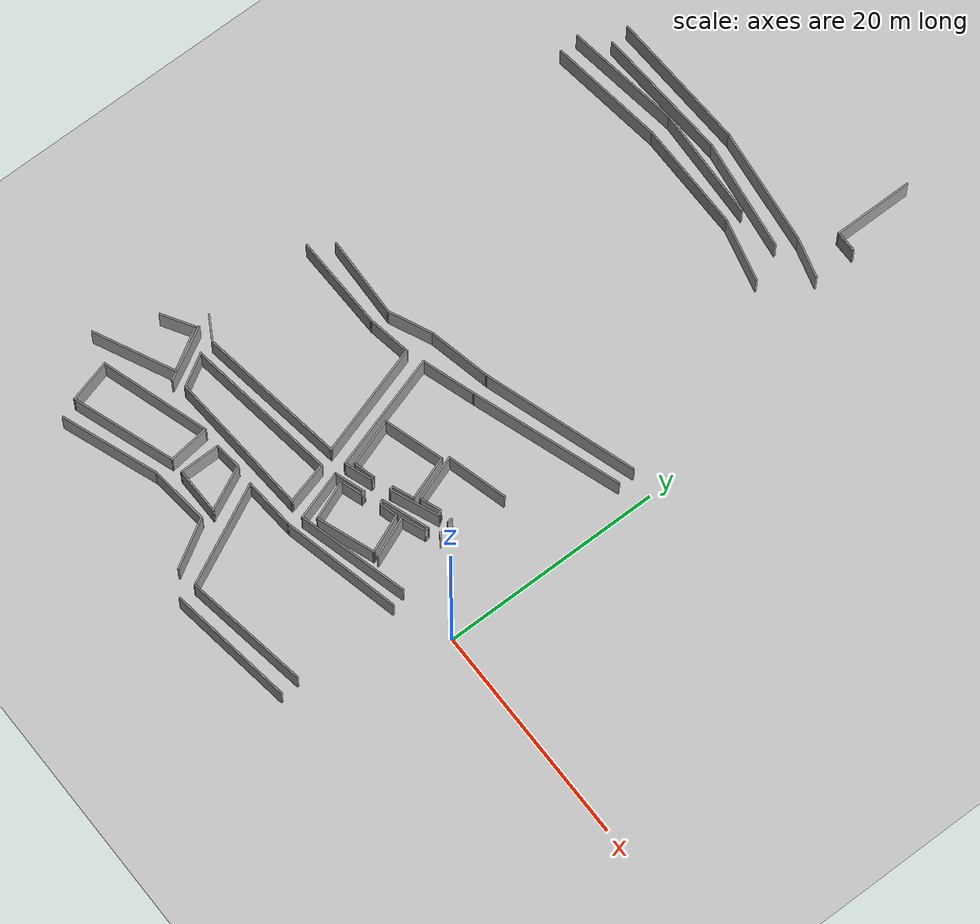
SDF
<sdf version="1.7">
 <world name="default">
  <include><uri>model://sun</uri></include>
  <include><uri>model://ground_plane</uri></include>
  <model name="final_max_v1">
   <pose>-2.52311 0.669104 0 0 -0 0</pose>
   <link name="Wall_106">
    <collision name="Wall_106_Collision">
     <geometry><box><size>12.8269 0.15 2.5</size></box></geometry>
     <pose>0 0 1.25 0 -0 0</pose>
    </collision>
    <visual name="Wall_106_Visual">
     <pose>0 0 1.25 0 -0 0</pose>
     <geometry><box><size>12.8269 0.15 2.5</size></box></geometry>
     <material>
      <script><uri>file://media/materials/scripts/gazebo.material</uri><name>Gazebo/Grey</name></script>
      <ambient>1 1 1 1</ambient>
     </material>
     <meta><layer>0</layer></meta>
    </visual>
    <pose>-23.9732 43.0681 0 0 -0 0.044415</pose>
   </link>
   <link name="Wall_107">
    <collision name="Wall_107_Collision">
     <geometry><box><size>10.9191 0.15 2.5</size></box></geometry>
     <pose>0 0 1.25 0 -0 0</pose>
    </collision>
    <visual name="Wall_107_Visual">
     <pose>0 0 1.25 0 -0 0</pose>
     <geometry><box><size>10.9191 0.15 2.5</size></box></geometry>
     <material>
      <script><uri>file://media/materials/scripts/gazebo.material</uri><name>Gazebo/Grey</name></script>
      <ambient>1 1 1 1</ambient>
     </material>
     <meta><layer>0</layer></meta>
    </visual>
    <pose>-12.2939 42.7164 0 0 -0 -0.117872</pose>
   </link>
   <link name="Wall_111">
    <collision name="Wall_111_Collision">
     <geometry><box><size>3.75 0.15 2.5</size></box></geometry>
     <pose>0 0 1.25 0 -0 0</pose>
    </collision>
    <visual name="Wall_111_Visual">
     <pose>0 0 1.25 0 -0 0</pose>
     <geometry><box><size>3.75 0.15 2.5</size></box></geometry>
     <material>
      <script><uri>file://media/materials/scripts/gazebo.material</uri><name>Gazebo/Grey</name></script>
      <ambient>1 1 1 1</ambient>
     </material>
     <meta><layer>0</layer></meta>
    </visual>
    <pose>-5.20804 41.6173 0 0 -0 -0.261799</pose>
   </link>
   <link name="Wall_113">
    <collision name="Wall_113_Collision">
     <geometry><box><size>2 0.15 2.5</size></box></geometry>
     <pose>0 0 1.25 0 -0 0</pose>
    </collision>
    <visual name="Wall_113_Visual">
     <pose>0 0 1.25 0 -0 0</pose>
     <geometry><box><size>2 0.15 2.5</size></box></geometry>
     <material>
      <script><uri>file://media/materials/scripts/gazebo.material</uri><name>Gazebo/Grey</name></script>
      <ambient>1 1 1 1</ambient>
     </material>
     <meta><layer>0</layer></meta>
    </visual>
    <pose>-4.39437 45.0014 0 0 -0 3.14159</pose>
   </link>
   <link name="Wall_114">
    <collision name="Wall_114_Collision">
     <geometry><box><size>7.25 0.15 2.5</size></box></geometry>
     <pose>0 0 1.25 0 -0 0</pose>
    </collision>
    <visual name="Wall_114_Visual">
     <pose>0 0 1.25 0 -0 0</pose>
     <geometry><box><size>7.25 0.15 2.5</size></box></geometry>
     <material>
      <script><uri>file://media/materials/scripts/gazebo.material</uri><name>Gazebo/Grey</name></script>
      <ambient>1 1 1 1</ambient>
     </material>
     <meta><layer>0</layer></meta>
    </visual>
    <pose>-5.31937 48.5514 0 0 -0 1.5708</pose>
   </link>
   <link name="Wall_155">
    <collision name="Wall_155_Collision">
     <geometry><box><size>12.4081 0.15 2.5</size></box></geometry>
     <pose>0 0 1.25 0 -0 0</pose>
    </collision>
    <visual name="Wall_155_Visual">
     <pose>0 0 1.25 0 -0 0</pose>
     <geometry><box><size>12.4081 0.15 2.5</size></box></geometry>
     <material>
      <script><uri>file://media/materials/scripts/gazebo.material</uri><name>Gazebo/Grey</name></script>
      <ambient>1 1 1 1</ambient>
     </material>
     <meta><layer>0</layer></meta>
    </visual>
    <pose>-23.8522 41.287 0 0 -0 0.060078</pose>
   </link>
   <link name="Wall_157">
    <collision name="Wall_157_Collision">
     <geometry><box><size>10.2725 0.15 2.5</size></box></geometry>
     <pose>0 0 1.25 0 -0 0</pose>
    </collision>
    <visual name="Wall_157_Visual">
     <pose>0 0 1.25 0 -0 0</pose>
     <geometry><box><size>10.2725 0.15 2.5</size></box></geometry>
     <material>
      <script><uri>file://media/materials/scripts/gazebo.material</uri><name>Gazebo/Grey</name></script>
      <ambient>1 1 1 1</ambient>
     </material>
     <meta><layer>0</layer></meta>
    </visual>
    <pose>-12.7202 40.965 0 0 -0 -0.136756</pose>
   </link>
   <link name="Wall_187">
    <collision name="Wall_187_Collision">
     <geometry><box><size>10.5586 0.15 2.5</size></box></geometry>
     <pose>0 0 1.25 0 -0 0</pose>
    </collision>
    <visual name="Wall_187_Visual">
     <pose>0 0 1.25 0 -0 0</pose>
     <geometry><box><size>10.5586 0.15 2.5</size></box></geometry>
     <material>
      <script><uri>file://media/materials/scripts/gazebo.material</uri><name>Gazebo/Grey</name></script>
      <ambient>1 1 1 1</ambient>
     </material>
     <meta><layer>0</layer></meta>
    </visual>
    <pose>-27.0306 39.7397 0 0 -0 0.141897</pose>
   </link>
   <link name="Wall_189">
    <collision name="Wall_189_Collision">
     <geometry><box><size>10.2804 0.15 2.5</size></box></geometry>
     <pose>0 0 1.25 0 -0 0</pose>
    </collision>
    <visual name="Wall_189_Visual">
     <pose>0 0 1.25 0 -0 0</pose>
     <geometry><box><size>10.2804 0.15 2.5</size></box></geometry>
     <material>
      <script><uri>file://media/materials/scripts/gazebo.material</uri><name>Gazebo/Grey</name></script>
      <ambient>1 1 1 1</ambient>
     </material>
     <meta><layer>0</layer></meta>
    </visual>
    <pose>-16.8186 40.2457 0 0 -0 -0.045423</pose>
   </link>
   <link name="Wall_207">
    <collision name="Wall_207_Collision">
     <geometry><box><size>10.546 0.15 2.5</size></box></geometry>
     <pose>0 0 1.25 0 -0 0</pose>
    </collision>
    <visual name="Wall_207_Visual">
     <pose>0 0 1.25 0 -0 0</pose>
     <geometry><box><size>10.546 0.15 2.5</size></box></geometry>
     <material>
      <script><uri>file://media/materials/scripts/gazebo.material</uri><name>Gazebo/Grey</name></script>
      <ambient>1 1 1 1</ambient>
     </material>
     <meta><layer>0</layer></meta>
    </visual>
    <pose>-26.7651 37.7958 0 0 -0 0.133136</pose>
   </link>
   <link name="Wall_208">
    <collision name="Wall_208_Collision">
     <geometry><box><size>10 0.15 2.5</size></box></geometry>
     <pose>0 0 1.25 0 -0 0</pose>
    </collision>
    <visual name="Wall_208_Visual">
     <pose>0 0 1.25 0 -0 0</pose>
     <geometry><box><size>10 0.15 2.5</size></box></geometry>
     <material>
      <script><uri>file://media/materials/scripts/gazebo.material</uri><name>Gazebo/Grey</name></script>
      <ambient>1 1 1 1</ambient>
     </material>
     <meta><layer>0</layer></meta>
    </visual>
    <pose>-16.6881 38.4858 0 0 -0 0</pose>
   </link>
   <link name="Wall_326">
    <collision name="Wall_326_Collision">
     <geometry><box><size>2 0.15 2.5</size></box></geometry>
     <pose>0 0 1.25 0 -0 0</pose>
    </collision>
    <visual name="Wall_326_Visual">
     <pose>0 0 1.25 0 -0 0</pose>
     <geometry><box><size>2 0.15 2.5</size></box></geometry>
     <material>
      <script><uri>file://media/materials/scripts/gazebo.material</uri><name>Gazebo/Grey</name></script>
      <ambient>1 1 1 1</ambient>
     </material>
     <meta><layer>0</layer></meta>
    </visual>
    <pose>-12.5221 1.99009 0 0 -0 -2.87979</pose>
   </link>
   <link name="Wall_327">
    <collision name="Wall_327_Collision">
     <geometry><box><size>4.52817 0.15 2.5</size></box></geometry>
     <pose>0 0 1.25 0 -0 0</pose>
    </collision>
    <visual name="Wall_327_Visual">
     <pose>0 0 1.25 0 -0 0</pose>
     <geometry><box><size>4.52817 0.15 2.5</size></box></geometry>
     <material>
      <script><uri>file://media/materials/scripts/gazebo.material</uri><name>Gazebo/Grey</name></script>
      <ambient>1 1 1 1</ambient>
     </material>
     <meta><layer>0</layer></meta>
    </visual>
    <pose>-14.1161 3.82466 0 0 -0 1.89652</pose>
   </link>
   <link name="Wall_328">
    <collision name="Wall_328_Collision">
     <geometry><box><size>5.68673 0.15 2.5</size></box></geometry>
     <pose>0 0 1.25 0 -0 0</pose>
    </collision>
    <visual name="Wall_328_Visual">
     <pose>0 0 1.25 0 -0 0</pose>
     <geometry><box><size>5.68673 0.15 2.5</size></box></geometry>
     <material>
      <script><uri>file://media/materials/scripts/gazebo.material</uri><name>Gazebo/Grey</name></script>
      <ambient>1 1 1 1</ambient>
     </material>
     <meta><layer>0</layer></meta>
    </visual>
    <pose>-12.1699 6.71066 0 0 -0 0.2977</pose>
   </link>
   <link name="Wall_329">
    <collision name="Wall_329_Collision">
     <geometry><box><size>4.22069 0.15 2.5</size></box></geometry>
     <pose>0 0 1.25 0 -0 0</pose>
    </collision>
    <visual name="Wall_329_Visual">
     <pose>0 0 1.25 0 -0 0</pose>
     <geometry><box><size>4.22069 0.15 2.5</size></box></geometry>
     <material>
      <script><uri>file://media/materials/scripts/gazebo.material</uri><name>Gazebo/Grey</name></script>
      <ambient>1 1 1 1</ambient>
     </material>
     <meta><layer>0</layer></meta>
    </visual>
    <pose>-8.8617 5.59789 0 0 -0 -1.2397</pose>
   </link>
   <link name="Wall_330">
    <collision name="Wall_330_Collision">
     <geometry><box><size>2.0935 0.15 2.5</size></box></geometry>
     <pose>0 0 1.25 0 -0 0</pose>
    </collision>
    <visual name="Wall_330_Visual">
     <pose>0 0 1.25 0 -0 0</pose>
     <geometry><box><size>2.0935 0.15 2.5</size></box></geometry>
     <material>
      <script><uri>file://media/materials/scripts/gazebo.material</uri><name>Gazebo/Grey</name></script>
      <ambient>1 1 1 1</ambient>
     </material>
     <meta><layer>0</layer></meta>
    </visual>
    <pose>-9.1023 3.3122 0 0 -0 -2.76109</pose>
   </link>
   <link name="Wall_332">
    <collision name="Wall_332_Collision">
     <geometry><box><size>2.01562 0.15 2.5</size></box></geometry>
     <pose>0 0 1.25 0 -0 0</pose>
    </collision>
    <visual name="Wall_332_Visual">
     <pose>0 0 1.25 0 -0 0</pose>
     <geometry><box><size>2.01562 0.15 2.5</size></box></geometry>
     <material>
      <script><uri>file://media/materials/scripts/gazebo.material</uri><name>Gazebo/Grey</name></script>
      <ambient>1 1 1 1</ambient>
     </material>
     <meta><layer>0</layer></meta>
    </visual>
    <pose>-6.96698 4.42497 0 0 -0 -2.77905</pose>
   </link>
   <link name="Wall_333">
    <collision name="Wall_333_Collision">
     <geometry><box><size>4.35405 0.15 2.5</size></box></geometry>
     <pose>0 0 1.25 0 -0 0</pose>
    </collision>
    <visual name="Wall_333_Visual">
     <pose>0 0 1.25 0 -0 0</pose>
     <geometry><box><size>4.35405 0.15 2.5</size></box></geometry>
     <material>
      <script><uri>file://media/materials/scripts/gazebo.material</uri><name>Gazebo/Grey</name></script>
      <ambient>1 1 1 1</ambient>
     </material>
     <meta><layer>0</layer></meta>
    </visual>
    <pose>-8.53088 6.07909 0 0 -0 1.90612</pose>
   </link>
   <link name="Wall_334">
    <collision name="Wall_334_Collision">
     <geometry><box><size>5.63652 0.15 2.5</size></box></geometry>
     <pose>0 0 1.25 0 -0 0</pose>
    </collision>
    <visual name="Wall_334_Visual">
     <pose>0 0 1.25 0 -0 0</pose>
     <geometry><box><size>5.63652 0.15 2.5</size></box></geometry>
     <material>
      <script><uri>file://media/materials/scripts/gazebo.material</uri><name>Gazebo/Grey</name></script>
      <ambient>1 1 1 1</ambient>
     </material>
     <meta><layer>0</layer></meta>
    </visual>
    <pose>-6.57601 8.78584 0 0 -0 0.266252</pose>
   </link>
   <link name="Wall_338">
    <collision name="Wall_338_Collision">
     <geometry><box><size>3.79257 0.15 2.5</size></box></geometry>
     <pose>0 0 1.25 0 -0 0</pose>
    </collision>
    <visual name="Wall_338_Visual">
     <pose>0 0 1.25 0 -0 0</pose>
     <geometry><box><size>3.79257 0.15 2.5</size></box></geometry>
     <material>
      <script><uri>file://media/materials/scripts/gazebo.material</uri><name>Gazebo/Grey</name></script>
      <ambient>1 1 1 1</ambient>
     </material>
     <meta><layer>0</layer></meta>
    </visual>
    <pose>-12.1998 -1.73062 0 0 -0 -1.20362</pose>
   </link>
   <link name="Wall_339">
    <collision name="Wall_339_Collision">
     <geometry><box><size>5.49451 0.15 2.5</size></box></geometry>
     <pose>0 0 1.25 0 -0 0</pose>
    </collision>
    <visual name="Wall_339_Visual">
     <pose>0 0 1.25 0 -0 0</pose>
     <geometry><box><size>5.49451 0.15 2.5</size></box></geometry>
     <material>
      <script><uri>file://media/materials/scripts/gazebo.material</uri><name>Gazebo/Grey</name></script>
      <ambient>1 1 1 1</ambient>
     </material>
     <meta><layer>0</layer></meta>
    </visual>
    <pose>-9.03535 -2.51518 0 0 -0 0.349607</pose>
   </link>
   <link name="Wall_340">
    <collision name="Wall_340_Collision">
     <geometry><box><size>3.71476 0.15 2.5</size></box></geometry>
     <pose>0 0 1.25 0 -0 0</pose>
    </collision>
    <visual name="Wall_340_Visual">
     <pose>0 0 1.25 0 -0 0</pose>
     <geometry><box><size>3.71476 0.15 2.5</size></box></geometry>
     <material>
      <script><uri>file://media/materials/scripts/gazebo.material</uri><name>Gazebo/Grey</name></script>
      <ambient>1 1 1 1</ambient>
     </material>
     <meta><layer>0</layer></meta>
    </visual>
    <pose>-7.2047 0.047724 0 0 -0 1.9622</pose>
   </link>
   <link name="Wall_343">
    <collision name="Wall_343_Collision">
     <geometry><box><size>3.92824 0.15 2.5</size></box></geometry>
     <pose>0 0 1.25 0 -0 0</pose>
    </collision>
    <visual name="Wall_343_Visual">
     <pose>0 0 1.25 0 -0 0</pose>
     <geometry><box><size>3.92824 0.15 2.5</size></box></geometry>
     <material>
      <script><uri>file://media/materials/scripts/gazebo.material</uri><name>Gazebo/Grey</name></script>
      <ambient>1 1 1 1</ambient>
     </material>
     <meta><layer>0</layer></meta>
    </visual>
    <pose>-6.76011 0.204637 0 0 -0 -1.18772</pose>
   </link>
   <link name="Wall_348">
    <collision name="Wall_348_Collision">
     <geometry><box><size>2.08526 0.15 2.5</size></box></geometry>
     <pose>0 0 1.25 0 -0 0</pose>
    </collision>
    <visual name="Wall_348_Visual">
     <pose>0 0 1.25 0 -0 0</pose>
     <geometry><box><size>2.08526 0.15 2.5</size></box></geometry>
     <material>
      <script><uri>file://media/materials/scripts/gazebo.material</uri><name>Gazebo/Grey</name></script>
      <ambient>1 1 1 1</ambient>
     </material>
     <meta><layer>0</layer></meta>
    </visual>
    <pose>-11.9382 0.283094 0 0 -0 0.330297</pose>
   </link>
   <link name="Wall_350">
    <collision name="Wall_350_Collision">
     <geometry><box><size>1.75 0.15 2.5</size></box></geometry>
     <pose>0 0 1.25 0 -0 0</pose>
    </collision>
    <visual name="Wall_350_Visual">
     <pose>0 0 1.25 0 -0 0</pose>
     <geometry><box><size>1.75 0.15 2.5</size></box></geometry>
     <material>
      <script><uri>file://media/materials/scripts/gazebo.material</uri><name>Gazebo/Grey</name></script>
      <ambient>1 1 1 1</ambient>
     </material>
     <meta><layer>0</layer></meta>
    </visual>
    <pose>-8.6574 1.48825 0 0 -0 -2.87979</pose>
   </link>
   <link name="Wall_352">
    <collision name="Wall_352_Collision">
     <geometry><box><size>2.28681 0.15 2.5</size></box></geometry>
     <pose>0 0 1.25 0 -0 0</pose>
    </collision>
    <visual name="Wall_352_Visual">
     <pose>0 0 1.25 0 -0 0</pose>
     <geometry><box><size>2.28681 0.15 2.5</size></box></geometry>
     <material>
      <script><uri>file://media/materials/scripts/gazebo.material</uri><name>Gazebo/Grey</name></script>
      <ambient>1 1 1 1</ambient>
     </material>
     <meta><layer>0</layer></meta>
    </visual>
    <pose>-6.47244 2.34911 0 0 -0 0.375961</pose>
   </link>
   <link name="Wall_356">
    <collision name="Wall_356_Collision">
     <geometry><box><size>0.444601 0.15 2.5</size></box></geometry>
     <pose>0 0 1.25 0 -0 0</pose>
    </collision>
    <visual name="Wall_356_Visual">
     <pose>0 0 1.25 0 -0 0</pose>
     <geometry><box><size>0.444601 0.15 2.5</size></box></geometry>
     <material>
      <script><uri>file://media/materials/scripts/gazebo.material</uri><name>Gazebo/Grey</name></script>
      <ambient>1 1 1 1</ambient>
     </material>
     <meta><layer>0</layer></meta>
    </visual>
    <pose>-11.0589 0.739759 0 0 -0 -1.32406</pose>
   </link>
   <link name="Wall_358">
    <collision name="Wall_358_Collision">
     <geometry><box><size>0.523214 0.15 2.5</size></box></geometry>
     <pose>0 0 1.25 0 -0 0</pose>
    </collision>
    <visual name="Wall_358_Visual">
     <pose>0 0 1.25 0 -0 0</pose>
     <geometry><box><size>0.523214 0.15 2.5</size></box></geometry>
     <material>
      <script><uri>file://media/materials/scripts/gazebo.material</uri><name>Gazebo/Grey</name></script>
      <ambient>1 1 1 1</ambient>
     </material>
     <meta><layer>0</layer></meta>
    </visual>
    <pose>-9.5231 1.443 0 0 -0 -1.04932</pose>
   </link>
   <link name="Wall_360">
    <collision name="Wall_360_Collision">
     <geometry><box><size>0.411181 0.15 2.5</size></box></geometry>
     <pose>0 0 1.25 0 -0 0</pose>
    </collision>
    <visual name="Wall_360_Visual">
     <pose>0 0 1.25 0 -0 0</pose>
     <geometry><box><size>0.411181 0.15 2.5</size></box></geometry>
     <material>
      <script><uri>file://media/materials/scripts/gazebo.material</uri><name>Gazebo/Grey</name></script>
      <ambient>1 1 1 1</ambient>
     </material>
     <meta><layer>0</layer></meta>
    </visual>
    <pose>-11.5853 2.1063 0 0 -0 1.90897</pose>
   </link>
   <link name="Wall_362">
    <collision name="Wall_362_Collision">
     <geometry><box><size>0.467902 0.15 2.5</size></box></geometry>
     <pose>0 0 1.25 0 -0 0</pose>
    </collision>
    <visual name="Wall_362_Visual">
     <pose>0 0 1.25 0 -0 0</pose>
     <geometry><box><size>0.467902 0.15 2.5</size></box></geometry>
     <material>
      <script><uri>file://media/materials/scripts/gazebo.material</uri><name>Gazebo/Grey</name></script>
      <ambient>1 1 1 1</ambient>
     </material>
     <meta><layer>0</layer></meta>
    </visual>
    <pose>-9.98226 2.79392 0 0 -0 1.71151</pose>
   </link>
   <link name="Wall_364">
    <collision name="Wall_364_Collision">
     <geometry><box><size>0.497007 0.15 2.5</size></box></geometry>
     <pose>0 0 1.25 0 -0 0</pose>
    </collision>
    <visual name="Wall_364_Visual">
     <pose>0 0 1.25 0 -0 0</pose>
     <geometry><box><size>0.497007 0.15 2.5</size></box></geometry>
     <material>
      <script><uri>file://media/materials/scripts/gazebo.material</uri><name>Gazebo/Grey</name></script>
      <ambient>1 1 1 1</ambient>
     </material>
     <meta><layer>0</layer></meta>
    </visual>
    <pose>-5.98113 4.62472 0 0 -0 2.28524</pose>
   </link>
   <link name="Wall_366">
    <collision name="Wall_366_Collision">
     <geometry><box><size>0.515419 0.15 2.5</size></box></geometry>
     <pose>0 0 1.25 0 -0 0</pose>
    </collision>
    <visual name="Wall_366_Visual">
     <pose>0 0 1.25 0 -0 0</pose>
     <geometry><box><size>0.515419 0.15 2.5</size></box></geometry>
     <material>
      <script><uri>file://media/materials/scripts/gazebo.material</uri><name>Gazebo/Grey</name></script>
      <ambient>1 1 1 1</ambient>
     </material>
     <meta><layer>0</layer></meta>
    </visual>
    <pose>-4.94543 4.8138 0 0 -0 1.60655</pose>
   </link>
   <link name="Wall_368">
    <collision name="Wall_368_Collision">
     <geometry><box><size>0.458009 0.15 2.5</size></box></geometry>
     <pose>0 0 1.25 0 -0 0</pose>
    </collision>
    <visual name="Wall_368_Visual">
     <pose>0 0 1.25 0 -0 0</pose>
     <geometry><box><size>0.458009 0.15 2.5</size></box></geometry>
     <material>
      <script><uri>file://media/materials/scripts/gazebo.material</uri><name>Gazebo/Grey</name></script>
      <ambient>1 1 1 1</ambient>
     </material>
     <meta><layer>0</layer></meta>
    </visual>
    <pose>-5.4839 2.89531 0 0 -0 -1.53674</pose>
   </link>
   <link name="Wall_370">
    <collision name="Wall_370_Collision">
     <geometry><box><size>0.49586 0.15 2.5</size></box></geometry>
     <pose>0 0 1.25 0 -0 0</pose>
    </collision>
    <visual name="Wall_370_Visual">
     <pose>0 0 1.25 0 -0 0</pose>
     <geometry><box><size>0.49586 0.15 2.5</size></box></geometry>
     <material>
      <script><uri>file://media/materials/scripts/gazebo.material</uri><name>Gazebo/Grey</name></script>
      <ambient>1 1 1 1</ambient>
     </material>
     <meta><layer>0</layer></meta>
    </visual>
    <pose>-4.41813 3.46707 0 0 -0 -0.602649</pose>
   </link>
   <link name="Wall_381">
    <collision name="Wall_381_Collision">
     <geometry><box><size>14.3834 0.15 2.5</size></box></geometry>
     <pose>0 0 1.25 0 -0 0</pose>
    </collision>
    <visual name="Wall_381_Visual">
     <pose>0 0 1.25 0 -0 0</pose>
     <geometry><box><size>14.3834 0.15 2.5</size></box></geometry>
     <material>
      <script><uri>file://media/materials/scripts/gazebo.material</uri><name>Gazebo/Grey</name></script>
      <ambient>1 1 1 1</ambient>
     </material>
     <meta><layer>0</layer></meta>
    </visual>
    <pose>-6.23233 16.9329 0 0 -0 0.313621</pose>
   </link>
   <link name="Wall_385">
    <collision name="Wall_385_Collision">
     <geometry><box><size>5.83984 0.15 2.5</size></box></geometry>
     <pose>0 0 1.25 0 -0 0</pose>
    </collision>
    <visual name="Wall_385_Visual">
     <pose>0 0 1.25 0 -0 0</pose>
     <geometry><box><size>5.83984 0.15 2.5</size></box></geometry>
     <material>
      <script><uri>file://media/materials/scripts/gazebo.material</uri><name>Gazebo/Grey</name></script>
      <ambient>1 1 1 1</ambient>
     </material>
     <meta><layer>0</layer></meta>
    </visual>
    <pose>-8.99774 37.818 0 0 -0 -0.236973</pose>
   </link>
   <link name="Wall_394">
    <collision name="Wall_394_Collision">
     <geometry><box><size>7.47359 0.15 2.5</size></box></geometry>
     <pose>0 0 1.25 0 -0 0</pose>
    </collision>
    <visual name="Wall_394_Visual">
     <pose>0 0 1.25 0 -0 0</pose>
     <geometry><box><size>7.47359 0.15 2.5</size></box></geometry>
     <material>
      <script><uri>file://media/materials/scripts/gazebo.material</uri><name>Gazebo/Grey</name></script>
      <ambient>1 1 1 1</ambient>
     </material>
     <meta><layer>0</layer></meta>
    </visual>
    <pose>-25.9366 11.9607 0 0 -0 -0.037482</pose>
   </link>
   <link name="Wall_398">
    <collision name="Wall_398_Collision">
     <geometry><box><size>8.58721 0.15 2.5</size></box></geometry>
     <pose>0 0 1.25 0 -0 0</pose>
    </collision>
    <visual name="Wall_398_Visual">
     <pose>0 0 1.25 0 -0 0</pose>
     <geometry><box><size>8.58721 0.15 2.5</size></box></geometry>
     <material>
      <script><uri>file://media/materials/scripts/gazebo.material</uri><name>Gazebo/Grey</name></script>
      <ambient>1 1 1 1</ambient>
     </material>
     <meta><layer>0</layer></meta>
    </visual>
    <pose>-26.6782 10.1895 0 0 -0 0.01868</pose>
   </link>
   <link name="Wall_400">
    <collision name="Wall_400_Collision">
     <geometry><box><size>4.23042 0.15 2.5</size></box></geometry>
     <pose>0 0 1.25 0 -0 0</pose>
    </collision>
    <visual name="Wall_400_Visual">
     <pose>0 0 1.25 0 -0 0</pose>
     <geometry><box><size>4.23042 0.15 2.5</size></box></geometry>
     <material>
      <script><uri>file://media/materials/scripts/gazebo.material</uri><name>Gazebo/Grey</name></script>
      <ambient>1 1 1 1</ambient>
     </material>
     <meta><layer>0</layer></meta>
    </visual>
    <pose>-20.4212 12.6703 0 0 -0 0.428018</pose>
   </link>
   <link name="Wall_401">
    <collision name="Wall_401_Collision">
     <geometry><box><size>5.84537 0.15 2.5</size></box></geometry>
     <pose>0 0 1.25 0 -0 0</pose>
    </collision>
    <visual name="Wall_401_Visual">
     <pose>0 0 1.25 0 -0 0</pose>
     <geometry><box><size>5.84537 0.15 2.5</size></box></geometry>
     <material>
      <script><uri>file://media/materials/scripts/gazebo.material</uri><name>Gazebo/Grey</name></script>
      <ambient>1 1 1 1</ambient>
     </material>
     <meta><layer>0</layer></meta>
    </visual>
    <pose>-15.7834 14.1273 0 0 -0 0.215921</pose>
   </link>
   <link name="Wall_404">
    <collision name="Wall_404_Collision">
     <geometry><box><size>4 0.15 2.5</size></box></geometry>
     <pose>0 0 1.25 0 -0 0</pose>
    </collision>
    <visual name="Wall_404_Visual">
     <pose>0 0 1.25 0 -0 0</pose>
     <geometry><box><size>4 0.15 2.5</size></box></geometry>
     <material>
      <script><uri>file://media/materials/scripts/gazebo.material</uri><name>Gazebo/Grey</name></script>
      <ambient>1 1 1 1</ambient>
     </material>
     <meta><layer>0</layer></meta>
    </visual>
    <pose>-14.4631 -2.31451 0 0 -0 1.8326</pose>
   </link>
   <link name="Wall_406">
    <collision name="Wall_406_Collision">
     <geometry><box><size>3.25 0.15 2.5</size></box></geometry>
     <pose>0 0 1.25 0 -0 0</pose>
    </collision>
    <visual name="Wall_406_Visual">
     <pose>0 0 1.25 0 -0 0</pose>
     <geometry><box><size>3.25 0.15 2.5</size></box></geometry>
     <material>
      <script><uri>file://media/materials/scripts/gazebo.material</uri><name>Gazebo/Grey</name></script>
      <ambient>1 1 1 1</ambient>
     </material>
     <meta><layer>0</layer></meta>
    </visual>
    <pose>-27.828 -3.70736 0 0 -0 -1.0472</pose>
   </link>
   <link name="Wall_407">
    <collision name="Wall_407_Collision">
     <geometry><box><size>13.2674 0.15 2.5</size></box></geometry>
     <pose>0 0 1.25 0 -0 0</pose>
    </collision>
    <visual name="Wall_407_Visual">
     <pose>0 0 1.25 0 -0 0</pose>
     <geometry><box><size>13.2674 0.15 2.5</size></box></geometry>
     <material>
      <script><uri>file://media/materials/scripts/gazebo.material</uri><name>Gazebo/Grey</name></script>
      <ambient>1 1 1 1</ambient>
     </material>
     <meta><layer>0</layer></meta>
    </visual>
    <pose>-20.5089 -4.61181 0 0 -0 0.066815</pose>
   </link>
   <link name="Wall_409">
    <collision name="Wall_409_Collision">
     <geometry><box><size>13.9247 0.15 2.5</size></box></geometry>
     <pose>0 0 1.25 0 -0 0</pose>
    </collision>
    <visual name="Wall_409_Visual">
     <pose>0 0 1.25 0 -0 0</pose>
     <geometry><box><size>13.9247 0.15 2.5</size></box></geometry>
     <material>
      <script><uri>file://media/materials/scripts/gazebo.material</uri><name>Gazebo/Grey</name></script>
      <ambient>1 1 1 1</ambient>
     </material>
     <meta><layer>0</layer></meta>
    </visual>
    <pose>-21.7821 -1.41006 0 0 -0 0.139103</pose>
   </link>
   <link name="Wall_412">
    <collision name="Wall_412_Collision">
     <geometry><box><size>7.75303 0.15 2.5</size></box></geometry>
     <pose>0 0 1.25 0 -0 0</pose>
    </collision>
    <visual name="Wall_412_Visual">
     <pose>0 0 1.25 0 -0 0</pose>
     <geometry><box><size>7.75303 0.15 2.5</size></box></geometry>
     <material>
      <script><uri>file://media/materials/scripts/gazebo.material</uri><name>Gazebo/Grey</name></script>
      <ambient>1 1 1 1</ambient>
     </material>
     <meta><layer>0</layer></meta>
    </visual>
    <pose>-32.0307 -6.51795 0 0 -0 0.448264</pose>
   </link>
   <link name="Wall_413">
    <collision name="Wall_413_Collision">
     <geometry><box><size>4.27641 0.15 2.5</size></box></geometry>
     <pose>0 0 1.25 0 -0 0</pose>
    </collision>
    <visual name="Wall_413_Visual">
     <pose>0 0 1.25 0 -0 0</pose>
     <geometry><box><size>4.27641 0.15 2.5</size></box></geometry>
     <material>
      <script><uri>file://media/materials/scripts/gazebo.material</uri><name>Gazebo/Grey</name></script>
      <ambient>1 1 1 1</ambient>
     </material>
     <meta><layer>0</layer></meta>
    </visual>
    <pose>-29.6509 -3.09202 0 0 -0 2.10252</pose>
   </link>
   <link name="Wall_414">
    <collision name="Wall_414_Collision">
     <geometry><box><size>3.27165 0.15 2.5</size></box></geometry>
     <pose>0 0 1.25 0 -0 0</pose>
    </collision>
    <visual name="Wall_414_Visual">
     <pose>0 0 1.25 0 -0 0</pose>
     <geometry><box><size>3.27165 0.15 2.5</size></box></geometry>
     <material>
      <script><uri>file://media/materials/scripts/gazebo.material</uri><name>Gazebo/Grey</name></script>
      <ambient>1 1 1 1</ambient>
     </material>
     <meta><layer>0</layer></meta>
    </visual>
    <pose>-32.0307 -2.12439 0 0 -0 -2.59543</pose>
   </link>
   <link name="Wall_432">
    <collision name="Wall_432_Collision">
     <geometry><box><size>2.5 0.15 2.5</size></box></geometry>
     <pose>0 0 1.25 0 -0 0</pose>
    </collision>
    <visual name="Wall_432_Visual">
     <pose>0 0 1.25 0 -0 0</pose>
     <geometry><box><size>2.5 0.15 2.5</size></box></geometry>
     <material>
      <script><uri>file://media/materials/scripts/gazebo.material</uri><name>Gazebo/Grey</name></script>
      <ambient>1 1 1 1</ambient>
     </material>
     <meta><layer>0</layer></meta>
    </visual>
    <pose>-29.8679 -0.415777 0 0 -0 -0.523599</pose>
   </link>
   <link name="Wall_433">
    <collision name="Wall_433_Collision">
     <geometry><box><size>13.5881 0.15 2.5</size></box></geometry>
     <pose>0 0 1.25 0 -0 0</pose>
    </collision>
    <visual name="Wall_433_Visual">
     <pose>0 0 1.25 0 -0 0</pose>
     <geometry><box><size>13.5881 0.15 2.5</size></box></geometry>
     <material>
      <script><uri>file://media/materials/scripts/gazebo.material</uri><name>Gazebo/Grey</name></script>
      <ambient>1 1 1 1</ambient>
     </material>
     <meta><layer>0</layer></meta>
    </visual>
    <pose>-22.2034 -0.021479 0 0 -0 0.146646</pose>
   </link>
   <link name="Wall_435">
    <collision name="Wall_435_Collision">
     <geometry><box><size>10.5808 0.15 2.5</size></box></geometry>
     <pose>0 0 1.25 0 -0 0</pose>
    </collision>
    <visual name="Wall_435_Visual">
     <pose>0 0 1.25 0 -0 0</pose>
     <geometry><box><size>10.5808 0.15 2.5</size></box></geometry>
     <material>
      <script><uri>file://media/materials/scripts/gazebo.material</uri><name>Gazebo/Grey</name></script>
      <ambient>1 1 1 1</ambient>
     </material>
     <meta><layer>0</layer></meta>
    </visual>
    <pose>-17.088 5.94576 0 0 -0 -1.27273</pose>
   </link>
   <link name="Wall_437">
    <collision name="Wall_437_Collision">
     <geometry><box><size>4.04743 0.15 2.5</size></box></geometry>
     <pose>0 0 1.25 0 -0 0</pose>
    </collision>
    <visual name="Wall_437_Visual">
     <pose>0 0 1.25 0 -0 0</pose>
     <geometry><box><size>4.04743 0.15 2.5</size></box></geometry>
     <material>
      <script><uri>file://media/materials/scripts/gazebo.material</uri><name>Gazebo/Grey</name></script>
      <ambient>1 1 1 1</ambient>
     </material>
     <meta><layer>0</layer></meta>
    </visual>
    <pose>-20.54 10.5998 0 0 -0 0.170915</pose>
   </link>
   <link name="Wall_439">
    <collision name="Wall_439_Collision">
     <geometry><box><size>10.9365 0.15 2.5</size></box></geometry>
     <pose>0 0 1.25 0 -0 0</pose>
    </collision>
    <visual name="Wall_439_Visual">
     <pose>0 0 1.25 0 -0 0</pose>
     <geometry><box><size>10.9365 0.15 2.5</size></box></geometry>
     <material>
      <script><uri>file://media/materials/scripts/gazebo.material</uri><name>Gazebo/Grey</name></script>
      <ambient>1 1 1 1</ambient>
     </material>
     <meta><layer>0</layer></meta>
    </visual>
    <pose>-15.4987 6.28843 0 0 -0 1.86683</pose>
   </link>
   <link name="Wall_440">
    <collision name="Wall_440_Collision">
     <geometry><box><size>5.05496 0.15 2.5</size></box></geometry>
     <pose>0 0 1.25 0 -0 0</pose>
    </collision>
    <visual name="Wall_440_Visual">
     <pose>0 0 1.25 0 -0 0</pose>
     <geometry><box><size>5.05496 0.15 2.5</size></box></geometry>
     <material>
      <script><uri>file://media/materials/scripts/gazebo.material</uri><name>Gazebo/Grey</name></script>
      <ambient>1 1 1 1</ambient>
     </material>
     <meta><layer>0</layer></meta>
    </visual>
    <pose>-14.7399 12.2058 0 0 -0 0.314541</pose>
   </link>
   <link name="Wall_442">
    <collision name="Wall_442_Collision">
     <geometry><box><size>2.6815 0.15 2.5</size></box></geometry>
     <pose>0 0 1.25 0 -0 0</pose>
    </collision>
    <visual name="Wall_442_Visual">
     <pose>0 0 1.25 0 -0 0</pose>
     <geometry><box><size>2.6815 0.15 2.5</size></box></geometry>
     <material>
      <script><uri>file://media/materials/scripts/gazebo.material</uri><name>Gazebo/Grey</name></script>
      <ambient>1 1 1 1</ambient>
     </material>
     <meta><layer>0</layer></meta>
    </visual>
    <pose>-12.7336 1.55645 0 0 -0 0.34381</pose>
   </link>
   <link name="Wall_444">
    <collision name="Wall_444_Collision">
     <geometry><box><size>4.68733 0.15 2.5</size></box></geometry>
     <pose>0 0 1.25 0 -0 0</pose>
    </collision>
    <visual name="Wall_444_Visual">
     <pose>0 0 1.25 0 -0 0</pose>
     <geometry><box><size>4.68733 0.15 2.5</size></box></geometry>
     <material>
      <script><uri>file://media/materials/scripts/gazebo.material</uri><name>Gazebo/Grey</name></script>
      <ambient>1 1 1 1</ambient>
     </material>
     <meta><layer>0</layer></meta>
    </visual>
    <pose>-13.0325 -2.16165 0 0 -0 -1.26791</pose>
   </link>
   <link name="Wall_446">
    <collision name="Wall_446_Collision">
     <geometry><box><size>2.90807 0.15 2.5</size></box></geometry>
     <pose>0 0 1.25 0 -0 0</pose>
    </collision>
    <visual name="Wall_446_Visual">
     <pose>0 0 1.25 0 -0 0</pose>
     <geometry><box><size>2.90807 0.15 2.5</size></box></geometry>
     <material>
      <script><uri>file://media/materials/scripts/gazebo.material</uri><name>Gazebo/Grey</name></script>
      <ambient>1 1 1 1</ambient>
     </material>
     <meta><layer>0</layer></meta>
    </visual>
    <pose>-12.402 0.443172 0 0 -0 0.324301</pose>
   </link>
   <link name="Wall_448">
    <collision name="Wall_448_Collision">
     <geometry><box><size>4.52238 0.15 2.5</size></box></geometry>
     <pose>0 0 1.25 0 -0 0</pose>
    </collision>
    <visual name="Wall_448_Visual">
     <pose>0 0 1.25 0 -0 0</pose>
     <geometry><box><size>4.52238 0.15 2.5</size></box></geometry>
     <material>
      <script><uri>file://media/materials/scripts/gazebo.material</uri><name>Gazebo/Grey</name></script>
      <ambient>1 1 1 1</ambient>
     </material>
     <meta><layer>0</layer></meta>
    </visual>
    <pose>-7.5526 2.32702 0 0 -0 0.336675</pose>
   </link>
   <link name="Wall_450">
    <collision name="Wall_450_Collision">
     <geometry><box><size>4.64704 0.15 2.5</size></box></geometry>
     <pose>0 0 1.25 0 -0 0</pose>
    </collision>
    <visual name="Wall_450_Visual">
     <pose>0 0 1.25 0 -0 0</pose>
     <geometry><box><size>4.64704 0.15 2.5</size></box></geometry>
     <material>
      <script><uri>file://media/materials/scripts/gazebo.material</uri><name>Gazebo/Grey</name></script>
      <ambient>1 1 1 1</ambient>
     </material>
     <meta><layer>0</layer></meta>
    </visual>
    <pose>-7.88723 3.50809 0 0 -0 0.398042</pose>
   </link>
   <link name="Wall_452">
    <collision name="Wall_452_Collision">
     <geometry><box><size>10.25 0.15 2.5</size></box></geometry>
     <pose>0 0 1.25 0 -0 0</pose>
    </collision>
    <visual name="Wall_452_Visual">
     <pose>0 0 1.25 0 -0 0</pose>
     <geometry><box><size>10.25 0.15 2.5</size></box></geometry>
     <material>
      <script><uri>file://media/materials/scripts/gazebo.material</uri><name>Gazebo/Grey</name></script>
      <ambient>1 1 1 1</ambient>
     </material>
     <meta><layer>0</layer></meta>
    </visual>
    <pose>-7.47787 -3.02001 0 0 -0 0.261799</pose>
   </link>
   <link name="Wall_458">
    <collision name="Wall_458_Collision">
     <geometry><box><size>5.20672 0.15 2.5</size></box></geometry>
     <pose>0 0 1.25 0 -0 0</pose>
    </collision>
    <visual name="Wall_458_Visual">
     <pose>0 0 1.25 0 -0 0</pose>
     <geometry><box><size>5.20672 0.15 2.5</size></box></geometry>
     <material>
      <script><uri>file://media/materials/scripts/gazebo.material</uri><name>Gazebo/Grey</name></script>
      <ambient>1 1 1 1</ambient>
     </material>
     <meta><layer>0</layer></meta>
    </visual>
    <pose>-29.3406 -3.33597 0 0 -0 -1.07323</pose>
   </link>
   <link name="Wall_540">
    <collision name="Wall_540_Collision">
     <geometry><box><size>11.4761 0.15 2.5</size></box></geometry>
     <pose>0 0 1.25 0 -0 0</pose>
    </collision>
    <visual name="Wall_540_Visual">
     <pose>0 0 1.25 0 -0 0</pose>
     <geometry><box><size>11.4761 0.15 2.5</size></box></geometry>
     <material>
      <script><uri>file://media/materials/scripts/gazebo.material</uri><name>Gazebo/Grey</name></script>
      <ambient>1 1 1 1</ambient>
     </material>
     <meta><layer>0</layer></meta>
    </visual>
    <pose>-7.21545 -15.3556 0 0 -0 0.141897</pose>
   </link>
   <link name="Wall_561">
    <collision name="Wall_561_Collision">
     <geometry><box><size>9.11129 0.15 2.5</size></box></geometry>
     <pose>0 0 1.25 0 -0 0</pose>
    </collision>
    <visual name="Wall_561_Visual">
     <pose>0 0 1.25 0 -0 0</pose>
     <geometry><box><size>9.11129 0.15 2.5</size></box></geometry>
     <material>
      <script><uri>file://media/materials/scripts/gazebo.material</uri><name>Gazebo/Grey</name></script>
      <ambient>1 1 1 1</ambient>
     </material>
     <meta><layer>0</layer></meta>
    </visual>
    <pose>-26.7301 -12.8612 0 0 -0 0.352405</pose>
   </link>
   <link name="Wall_576">
    <collision name="Wall_576_Collision">
     <geometry><box><size>5.446 0.15 2.5</size></box></geometry>
     <pose>0 0 1.25 0 -0 0</pose>
    </collision>
    <visual name="Wall_576_Visual">
     <pose>0 0 1.25 0 -0 0</pose>
     <geometry><box><size>5.446 0.15 2.5</size></box></geometry>
     <material>
      <script><uri>file://media/materials/scripts/gazebo.material</uri><name>Gazebo/Grey</name></script>
      <ambient>1 1 1 1</ambient>
     </material>
     <meta><layer>0</layer></meta>
    </visual>
    <pose>-19.8928 -11.024 0 0 -0 0.10998</pose>
   </link>
   <link name="Wall_578">
    <collision name="Wall_578_Collision">
     <geometry><box><size>4.78278 0.15 2.5</size></box></geometry>
     <pose>0 0 1.25 0 -0 0</pose>
    </collision>
    <visual name="Wall_578_Visual">
     <pose>0 0 1.25 0 -0 0</pose>
     <geometry><box><size>4.78278 0.15 2.5</size></box></geometry>
     <material>
      <script><uri>file://media/materials/scripts/gazebo.material</uri><name>Gazebo/Grey</name></script>
      <ambient>1 1 1 1</ambient>
     </material>
     <meta><layer>0</layer></meta>
    </visual>
    <pose>-16.0951 -12.735 0 0 -0 -1.0434</pose>
   </link>
   <link name="Wall_588">
    <collision name="Wall_588_Collision">
     <geometry><box><size>4 0.15 2.5</size></box></geometry>
     <pose>0 0 1.25 0 -0 0</pose>
    </collision>
    <visual name="Wall_588_Visual">
     <pose>0 0 1.25 0 -0 0</pose>
     <geometry><box><size>4 0.15 2.5</size></box></geometry>
     <material>
      <script><uri>file://media/materials/scripts/gazebo.material</uri><name>Gazebo/Grey</name></script>
      <ambient>1 1 1 1</ambient>
     </material>
     <meta><layer>0</layer></meta>
    </visual>
    <pose>-32.1306 -10.8851 0 0 -0 -1.309</pose>
   </link>
   <link name="Wall_591">
    <collision name="Wall_591_Collision">
     <geometry><box><size>9.64127 0.15 2.5</size></box></geometry>
     <pose>0 0 1.25 0 -0 0</pose>
    </collision>
    <visual name="Wall_591_Visual">
     <pose>0 0 1.25 0 -0 0</pose>
     <geometry><box><size>9.64127 0.15 2.5</size></box></geometry>
     <material>
      <script><uri>file://media/materials/scripts/gazebo.material</uri><name>Gazebo/Grey</name></script>
      <ambient>1 1 1 1</ambient>
     </material>
     <meta><layer>0</layer></meta>
    </visual>
    <pose>-27.1482 -11.1909 0 0 -0 0.333529</pose>
   </link>
   <link name="Wall_593">
    <collision name="Wall_593_Collision">
     <geometry><box><size>3.81354 0.15 2.5</size></box></geometry>
     <pose>0 0 1.25 0 -0 0</pose>
    </collision>
    <visual name="Wall_593_Visual">
     <pose>0 0 1.25 0 -0 0</pose>
     <geometry><box><size>3.81354 0.15 2.5</size></box></geometry>
     <material>
      <script><uri>file://media/materials/scripts/gazebo.material</uri><name>Gazebo/Grey</name></script>
      <ambient>1 1 1 1</ambient>
     </material>
     <meta><layer>0</layer></meta>
    </visual>
    <pose>-22.8813 -7.81839 0 0 -0 1.68964</pose>
   </link>
   <link name="Wall_594">
    <collision name="Wall_594_Collision">
     <geometry><box><size>10.1492 0.15 2.5</size></box></geometry>
     <pose>0 0 1.25 0 -0 0</pose>
    </collision>
    <visual name="Wall_594_Visual">
     <pose>0 0 1.25 0 -0 0</pose>
     <geometry><box><size>10.1492 0.15 2.5</size></box></geometry>
     <material>
      <script><uri>file://media/materials/scripts/gazebo.material</uri><name>Gazebo/Grey</name></script>
      <ambient>1 1 1 1</ambient>
     </material>
     <meta><layer>0</layer></meta>
    </visual>
    <pose>-27.8636 -7.51261 0 0 -0 -2.83413</pose>
   </link>
   <link name="Wall_596">
    <collision name="Wall_596_Collision">
     <geometry><box><size>3.75 0.15 2.5</size></box></geometry>
     <pose>0 0 1.25 0 -0 0</pose>
    </collision>
    <visual name="Wall_596_Visual">
     <pose>0 0 1.25 0 -0 0</pose>
     <geometry><box><size>3.75 0.15 2.5</size></box></geometry>
     <material>
      <script><uri>file://media/materials/scripts/gazebo.material</uri><name>Gazebo/Grey</name></script>
      <ambient>1 1 1 1</ambient>
     </material>
     <meta><layer>0</layer></meta>
    </visual>
    <pose>-21.349 -7.86683 0 0 -0 -1.5708</pose>
   </link>
   <link name="Wall_597">
    <collision name="Wall_597_Collision">
     <geometry><box><size>4.32191 0.15 2.5</size></box></geometry>
     <pose>0 0 1.25 0 -0 0</pose>
    </collision>
    <visual name="Wall_597_Visual">
     <pose>0 0 1.25 0 -0 0</pose>
     <geometry><box><size>4.32191 0.15 2.5</size></box></geometry>
     <material>
      <script><uri>file://media/materials/scripts/gazebo.material</uri><name>Gazebo/Grey</name></script>
      <ambient>1 1 1 1</ambient>
     </material>
     <meta><layer>0</layer></meta>
    </visual>
    <pose>-19.2631 -9.64992 0 0 -0 0.008105</pose>
   </link>
   <link name="Wall_598">
    <collision name="Wall_598_Collision">
     <geometry><box><size>4.39386 0.15 2.5</size></box></geometry>
     <pose>0 0 1.25 0 -0 0</pose>
    </collision>
    <visual name="Wall_598_Visual">
     <pose>0 0 1.25 0 -0 0</pose>
     <geometry><box><size>4.39386 0.15 2.5</size></box></geometry>
     <material>
      <script><uri>file://media/materials/scripts/gazebo.material</uri><name>Gazebo/Grey</name></script>
      <ambient>1 1 1 1</ambient>
     </material>
     <meta><layer>0</layer></meta>
    </visual>
    <pose>-18.0856 -7.71535 0 0 -0 2.01317</pose>
   </link>
   <link name="Wall_599">
    <collision name="Wall_599_Collision">
     <geometry><box><size>2.52036 0.15 2.5</size></box></geometry>
     <pose>0 0 1.25 0 -0 0</pose>
    </collision>
    <visual name="Wall_599_Visual">
     <pose>0 0 1.25 0 -0 0</pose>
     <geometry><box><size>2.52036 0.15 2.5</size></box></geometry>
     <material>
      <script><uri>file://media/materials/scripts/gazebo.material</uri><name>Gazebo/Grey</name></script>
      <ambient>1 1 1 1</ambient>
     </material>
     <meta><layer>0</layer></meta>
    </visual>
    <pose>-20.1715 -5.93225 0 0 -0 -3.0278</pose>
   </link>
   <link name="Wall_601">
    <collision name="Wall_601_Collision">
     <geometry><box><size>9.71984 0.15 2.5</size></box></geometry>
     <pose>0 0 1.25 0 -0 0</pose>
    </collision>
    <visual name="Wall_601_Visual">
     <pose>0 0 1.25 0 -0 0</pose>
     <geometry><box><size>9.71984 0.15 2.5</size></box></geometry>
     <material>
      <script><uri>file://media/materials/scripts/gazebo.material</uri><name>Gazebo/Grey</name></script>
      <ambient>1 1 1 1</ambient>
     </material>
     <meta><layer>0</layer></meta>
    </visual>
    <pose>-15.0913 -10.2386 0 0 -0 -1.11973</pose>
   </link>
   <link name="Wall_602">
    <collision name="Wall_602_Collision">
     <geometry><box><size>11.3908 0.15 2.5</size></box></geometry>
     <pose>0 0 1.25 0 -0 0</pose>
    </collision>
    <visual name="Wall_602_Visual">
     <pose>0 0 1.25 0 -0 0</pose>
     <geometry><box><size>11.3908 0.15 2.5</size></box></geometry>
     <material>
      <script><uri>file://media/materials/scripts/gazebo.material</uri><name>Gazebo/Grey</name></script>
      <ambient>1 1 1 1</ambient>
     </material>
     <meta><layer>0</layer></meta>
    </visual>
    <pose>-7.45639 -13.6522 0 0 -0 0.159507</pose>
   </link>
   <link name="Wall_604">
    <collision name="Wall_604_Collision">
     <geometry><box><size>4.75114 0.15 2.5</size></box></geometry>
     <pose>0 0 1.25 0 -0 0</pose>
    </collision>
    <visual name="Wall_604_Visual">
     <pose>0 0 1.25 0 -0 0</pose>
     <geometry><box><size>4.75114 0.15 2.5</size></box></geometry>
     <material>
      <script><uri>file://media/materials/scripts/gazebo.material</uri><name>Gazebo/Grey</name></script>
      <ambient>1 1 1 1</ambient>
     </material>
     <meta><layer>0</layer></meta>
    </visual>
    <pose>-14.8837 -5.75218 0 0 -0 0.078353</pose>
   </link>
   <link name="Wall_606">
    <collision name="Wall_606_Collision">
     <geometry><box><size>10.961 0.15 2.5</size></box></geometry>
     <pose>0 0 1.25 0 -0 0</pose>
    </collision>
    <visual name="Wall_606_Visual">
     <pose>0 0 1.25 0 -0 0</pose>
     <geometry><box><size>10.961 0.15 2.5</size></box></geometry>
     <material>
      <script><uri>file://media/materials/scripts/gazebo.material</uri><name>Gazebo/Grey</name></script>
      <ambient>1 1 1 1</ambient>
     </material>
     <meta><layer>0</layer></meta>
    </visual>
    <pose>-7.32839 -4.33404 0 0 -0 0.231091</pose>
   </link>
   <link name="Wall_610">
    <collision name="Wall_610_Collision">
     <geometry><box><size>14.0742 0.15 2.5</size></box></geometry>
     <pose>0 0 1.25 0 -0 0</pose>
    </collision>
    <visual name="Wall_610_Visual">
     <pose>0 0 1.25 0 -0 0</pose>
     <geometry><box><size>14.0742 0.15 2.5</size></box></geometry>
     <material>
      <script><uri>file://media/materials/scripts/gazebo.material</uri><name>Gazebo/Grey</name></script>
      <ambient>1 1 1 1</ambient>
     </material>
     <meta><layer>0</layer></meta>
    </visual>
    <pose>-5.81988 15.2164 0 0 -0 0.32937</pose>
   </link>
   <static>1</static>
  </model>
 </world>
</sdf>
